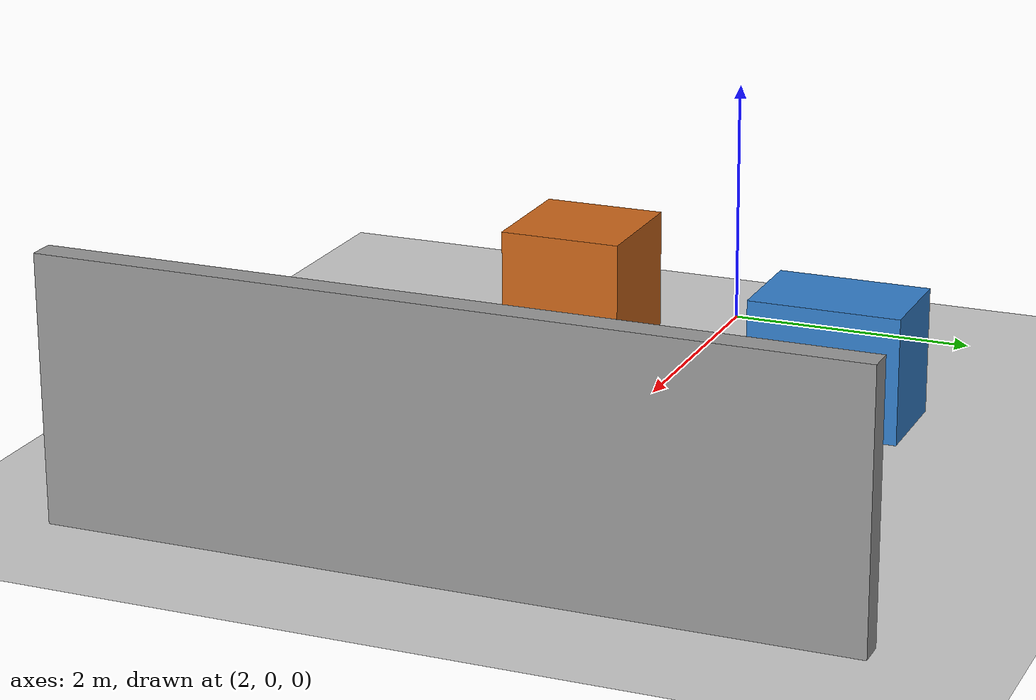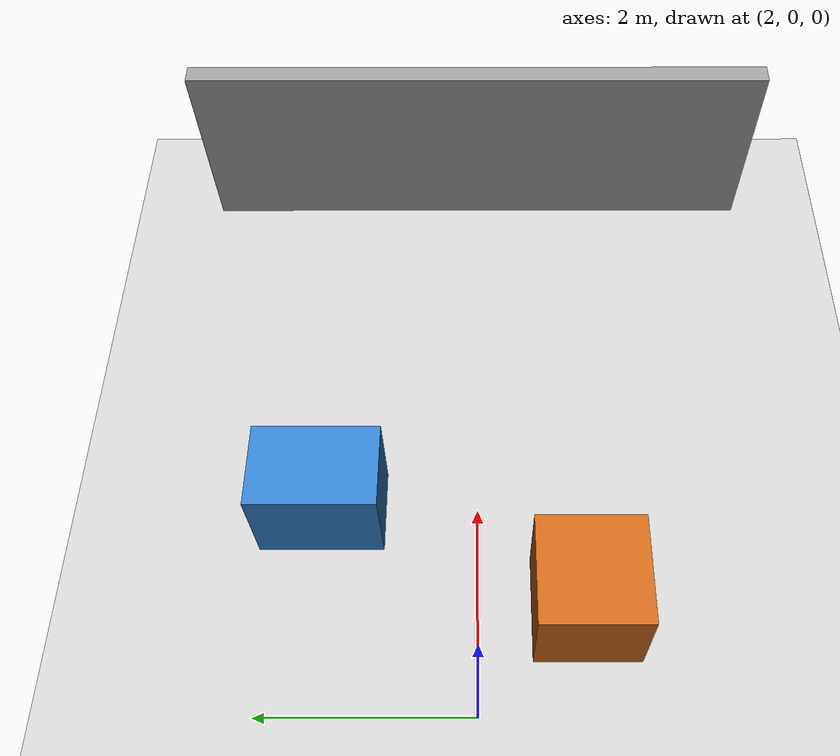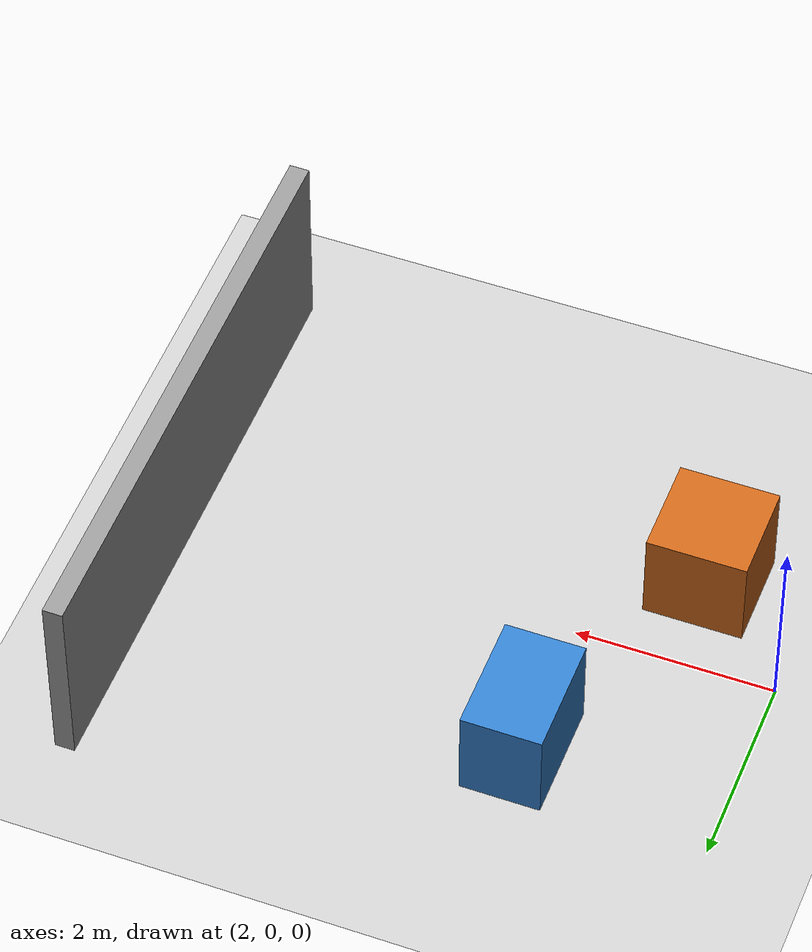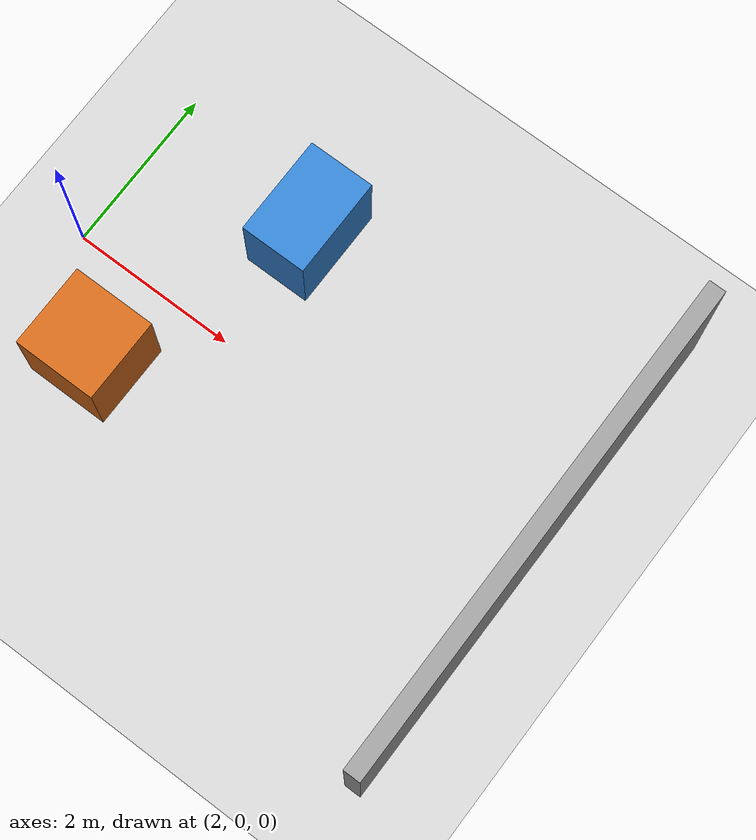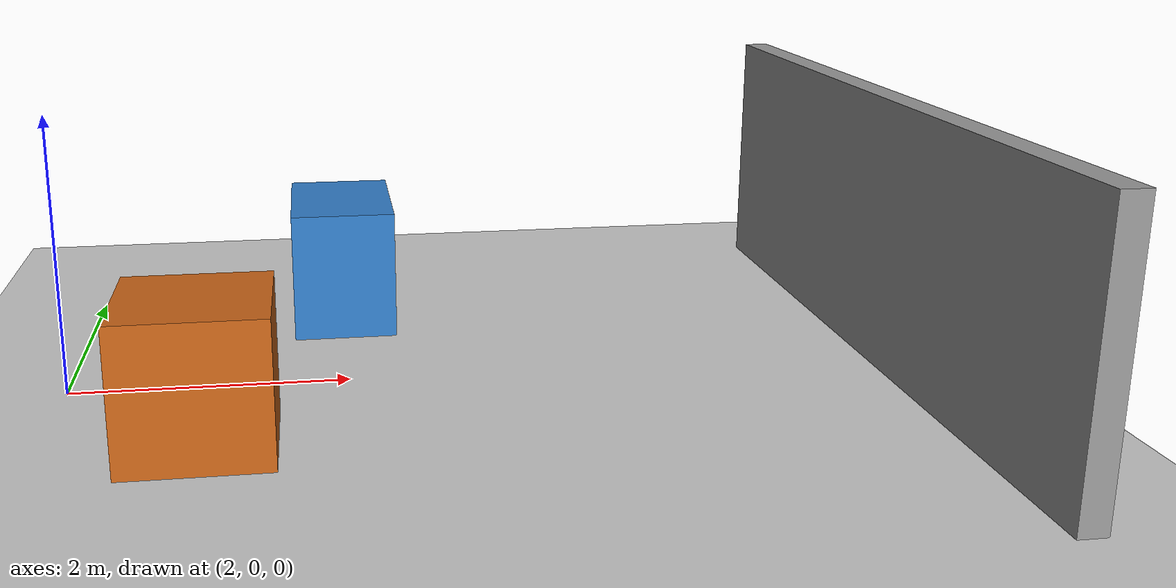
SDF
<?xml version="1.0" ?>
<sdf version="1.6">
  <world name="factory_zone">
    <include>
      <uri>model://sun</uri>
    </include>
    <include>
      <uri>model://ground_plane</uri>
    </include>

    <model name="factory_box_01">
      <pose>3.0 -1.0 0.5 0 0 0</pose>
      <link name="link">
        <collision name="collision">
          <geometry><box><size>1.0 1.0 1.0</size></box></geometry>
        </collision>
        <visual name="visual">
          <geometry><box><size>1.0 1.0 1.0</size></box></geometry>
          <material>
            <ambient>0.8 0.4 0.1 1</ambient>
            <diffuse>0.8 0.4 0.1 1</diffuse>
          </material>
        </visual>
      </link>
    </model>

    <model name="factory_box_02">
      <pose>4.0 1.5 0.5 0 0 0</pose>
      <link name="link">
        <collision name="collision">
          <geometry><box><size>0.8 1.2 1.0</size></box></geometry>
        </collision>
        <visual name="visual">
          <geometry><box><size>0.8 1.2 1.0</size></box></geometry>
          <material>
            <ambient>0.2 0.5 0.8 1</ambient>
            <diffuse>0.2 0.5 0.8 1</diffuse>
          </material>
        </visual>
      </link>
    </model>

    <model name="factory_wall_front">
      <pose>8.0 0.0 1.0 0 0 0</pose>
      <static>true</static>
      <link name="link">
        <collision name="collision">
          <geometry><box><size>0.2 6.0 2.0</size></box></geometry>
        </collision>
        <visual name="visual">
          <geometry><box><size>0.2 6.0 2.0</size></box></geometry>
          <material>
            <ambient>0.6 0.6 0.6 1</ambient>
            <diffuse>0.6 0.6 0.6 1</diffuse>
          </material>
        </visual>
      </link>
    </model>
  </world>
</sdf>
